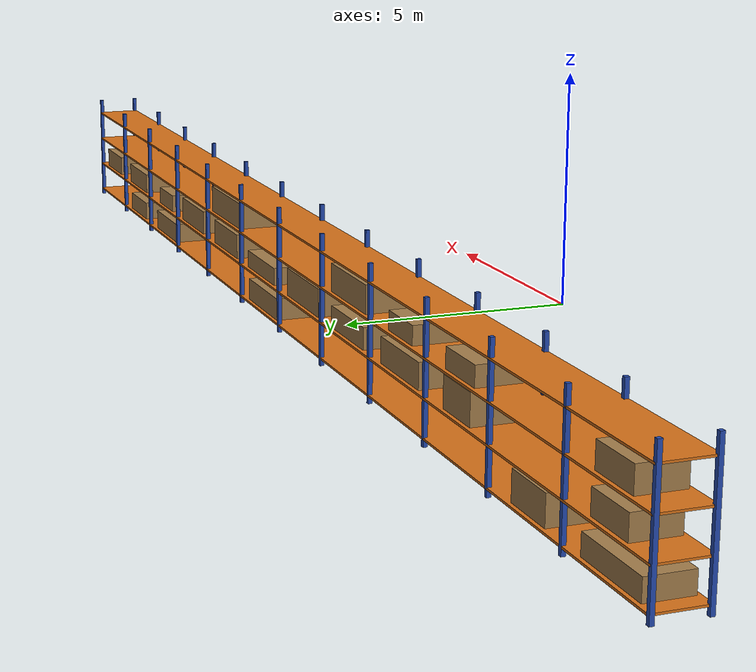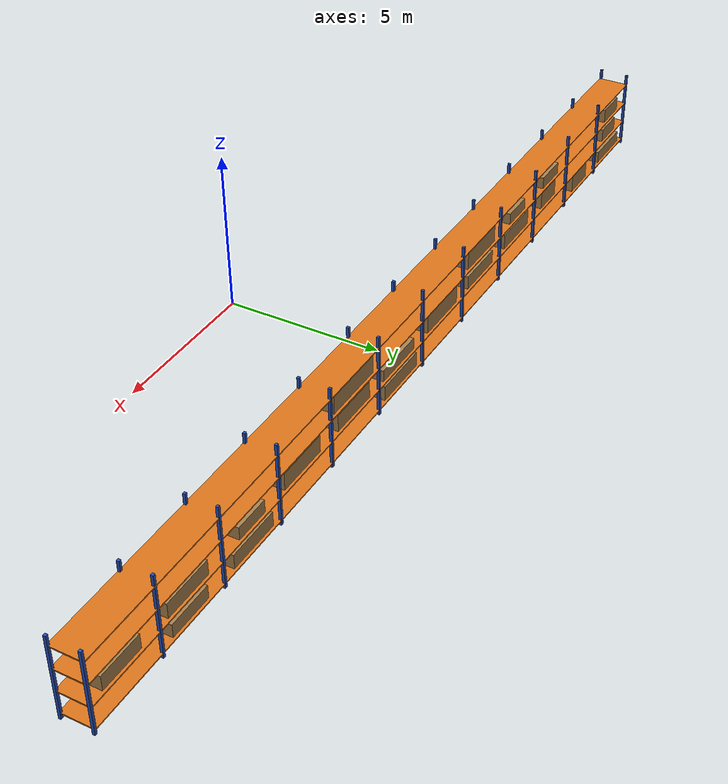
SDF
<sdf version="1.6">
 <world name="warehouse">
  <model name="shelf_row_0">
   <static>true</static>
   <link name="link">
    <visual name="up0_0_v">
     <pose>-15.0000 5.5400 1.3000 0 0 0.0000</pose>
     <geometry><box><size>0.0800 0.0800 2.6000</size></box></geometry>
     <material>
      <ambient>0.15 0.3 0.7 1</ambient>
      <diffuse>0.15 0.3 0.7 1</diffuse>
      <specular>0.1 0.1 0.1 1</specular>
     </material>
    </visual>
    <collision name="up0_0_c">
     <pose>-15.0000 5.5400 1.3000 0 0 0.0000</pose>
     <geometry><box><size>0.0800 0.0800 2.6000</size></box></geometry>
    </collision>
    <visual name="up0_2_v">
     <pose>-15.0000 6.4600 1.3000 0 0 0.0000</pose>
     <geometry><box><size>0.0800 0.0800 2.6000</size></box></geometry>
     <material>
      <ambient>0.15 0.3 0.7 1</ambient>
      <diffuse>0.15 0.3 0.7 1</diffuse>
      <specular>0.1 0.1 0.1 1</specular>
     </material>
    </visual>
    <collision name="up0_2_c">
     <pose>-15.0000 6.4600 1.3000 0 0 0.0000</pose>
     <geometry><box><size>0.0800 0.0800 2.6000</size></box></geometry>
    </collision>
    <visual name="up1_0_v">
     <pose>-12.5000 5.5400 1.3000 0 0 0.0000</pose>
     <geometry><box><size>0.0800 0.0800 2.6000</size></box></geometry>
     <material>
      <ambient>0.15 0.3 0.7 1</ambient>
      <diffuse>0.15 0.3 0.7 1</diffuse>
      <specular>0.1 0.1 0.1 1</specular>
     </material>
    </visual>
    <collision name="up1_0_c">
     <pose>-12.5000 5.5400 1.3000 0 0 0.0000</pose>
     <geometry><box><size>0.0800 0.0800 2.6000</size></box></geometry>
    </collision>
    <visual name="up1_2_v">
     <pose>-12.5000 6.4600 1.3000 0 0 0.0000</pose>
     <geometry><box><size>0.0800 0.0800 2.6000</size></box></geometry>
     <material>
      <ambient>0.15 0.3 0.7 1</ambient>
      <diffuse>0.15 0.3 0.7 1</diffuse>
      <specular>0.1 0.1 0.1 1</specular>
     </material>
    </visual>
    <collision name="up1_2_c">
     <pose>-12.5000 6.4600 1.3000 0 0 0.0000</pose>
     <geometry><box><size>0.0800 0.0800 2.6000</size></box></geometry>
    </collision>
    <visual name="up2_0_v">
     <pose>-10.0000 5.5400 1.3000 0 0 0.0000</pose>
     <geometry><box><size>0.0800 0.0800 2.6000</size></box></geometry>
     <material>
      <ambient>0.15 0.3 0.7 1</ambient>
      <diffuse>0.15 0.3 0.7 1</diffuse>
      <specular>0.1 0.1 0.1 1</specular>
     </material>
    </visual>
    <collision name="up2_0_c">
     <pose>-10.0000 5.5400 1.3000 0 0 0.0000</pose>
     <geometry><box><size>0.0800 0.0800 2.6000</size></box></geometry>
    </collision>
    <visual name="up2_2_v">
     <pose>-10.0000 6.4600 1.3000 0 0 0.0000</pose>
     <geometry><box><size>0.0800 0.0800 2.6000</size></box></geometry>
     <material>
      <ambient>0.15 0.3 0.7 1</ambient>
      <diffuse>0.15 0.3 0.7 1</diffuse>
      <specular>0.1 0.1 0.1 1</specular>
     </material>
    </visual>
    <collision name="up2_2_c">
     <pose>-10.0000 6.4600 1.3000 0 0 0.0000</pose>
     <geometry><box><size>0.0800 0.0800 2.6000</size></box></geometry>
    </collision>
    <visual name="up3_0_v">
     <pose>-7.5000 5.5400 1.3000 0 0 0.0000</pose>
     <geometry><box><size>0.0800 0.0800 2.6000</size></box></geometry>
     <material>
      <ambient>0.15 0.3 0.7 1</ambient>
      <diffuse>0.15 0.3 0.7 1</diffuse>
      <specular>0.1 0.1 0.1 1</specular>
     </material>
    </visual>
    <collision name="up3_0_c">
     <pose>-7.5000 5.5400 1.3000 0 0 0.0000</pose>
     <geometry><box><size>0.0800 0.0800 2.6000</size></box></geometry>
    </collision>
    <visual name="up3_2_v">
     <pose>-7.5000 6.4600 1.3000 0 0 0.0000</pose>
     <geometry><box><size>0.0800 0.0800 2.6000</size></box></geometry>
     <material>
      <ambient>0.15 0.3 0.7 1</ambient>
      <diffuse>0.15 0.3 0.7 1</diffuse>
      <specular>0.1 0.1 0.1 1</specular>
     </material>
    </visual>
    <collision name="up3_2_c">
     <pose>-7.5000 6.4600 1.3000 0 0 0.0000</pose>
     <geometry><box><size>0.0800 0.0800 2.6000</size></box></geometry>
    </collision>
    <visual name="up4_0_v">
     <pose>-5.0000 5.5400 1.3000 0 0 0.0000</pose>
     <geometry><box><size>0.0800 0.0800 2.6000</size></box></geometry>
     <material>
      <ambient>0.15 0.3 0.7 1</ambient>
      <diffuse>0.15 0.3 0.7 1</diffuse>
      <specular>0.1 0.1 0.1 1</specular>
     </material>
    </visual>
    <collision name="up4_0_c">
     <pose>-5.0000 5.5400 1.3000 0 0 0.0000</pose>
     <geometry><box><size>0.0800 0.0800 2.6000</size></box></geometry>
    </collision>
    <visual name="up4_2_v">
     <pose>-5.0000 6.4600 1.3000 0 0 0.0000</pose>
     <geometry><box><size>0.0800 0.0800 2.6000</size></box></geometry>
     <material>
      <ambient>0.15 0.3 0.7 1</ambient>
      <diffuse>0.15 0.3 0.7 1</diffuse>
      <specular>0.1 0.1 0.1 1</specular>
     </material>
    </visual>
    <collision name="up4_2_c">
     <pose>-5.0000 6.4600 1.3000 0 0 0.0000</pose>
     <geometry><box><size>0.0800 0.0800 2.6000</size></box></geometry>
    </collision>
    <visual name="up5_0_v">
     <pose>-2.5000 5.5400 1.3000 0 0 0.0000</pose>
     <geometry><box><size>0.0800 0.0800 2.6000</size></box></geometry>
     <material>
      <ambient>0.15 0.3 0.7 1</ambient>
      <diffuse>0.15 0.3 0.7 1</diffuse>
      <specular>0.1 0.1 0.1 1</specular>
     </material>
    </visual>
    <collision name="up5_0_c">
     <pose>-2.5000 5.5400 1.3000 0 0 0.0000</pose>
     <geometry><box><size>0.0800 0.0800 2.6000</size></box></geometry>
    </collision>
    <visual name="up5_2_v">
     <pose>-2.5000 6.4600 1.3000 0 0 0.0000</pose>
     <geometry><box><size>0.0800 0.0800 2.6000</size></box></geometry>
     <material>
      <ambient>0.15 0.3 0.7 1</ambient>
      <diffuse>0.15 0.3 0.7 1</diffuse>
      <specular>0.1 0.1 0.1 1</specular>
     </material>
    </visual>
    <collision name="up5_2_c">
     <pose>-2.5000 6.4600 1.3000 0 0 0.0000</pose>
     <geometry><box><size>0.0800 0.0800 2.6000</size></box></geometry>
    </collision>
    <visual name="up6_0_v">
     <pose>0.0000 5.5400 1.3000 0 0 0.0000</pose>
     <geometry><box><size>0.0800 0.0800 2.6000</size></box></geometry>
     <material>
      <ambient>0.15 0.3 0.7 1</ambient>
      <diffuse>0.15 0.3 0.7 1</diffuse>
      <specular>0.1 0.1 0.1 1</specular>
     </material>
    </visual>
    <collision name="up6_0_c">
     <pose>0.0000 5.5400 1.3000 0 0 0.0000</pose>
     <geometry><box><size>0.0800 0.0800 2.6000</size></box></geometry>
    </collision>
    <visual name="up6_2_v">
     <pose>0.0000 6.4600 1.3000 0 0 0.0000</pose>
     <geometry><box><size>0.0800 0.0800 2.6000</size></box></geometry>
     <material>
      <ambient>0.15 0.3 0.7 1</ambient>
      <diffuse>0.15 0.3 0.7 1</diffuse>
      <specular>0.1 0.1 0.1 1</specular>
     </material>
    </visual>
    <collision name="up6_2_c">
     <pose>0.0000 6.4600 1.3000 0 0 0.0000</pose>
     <geometry><box><size>0.0800 0.0800 2.6000</size></box></geometry>
    </collision>
    <visual name="up7_0_v">
     <pose>2.5000 5.5400 1.3000 0 0 0.0000</pose>
     <geometry><box><size>0.0800 0.0800 2.6000</size></box></geometry>
     <material>
      <ambient>0.15 0.3 0.7 1</ambient>
      <diffuse>0.15 0.3 0.7 1</diffuse>
      <specular>0.1 0.1 0.1 1</specular>
     </material>
    </visual>
    <collision name="up7_0_c">
     <pose>2.5000 5.5400 1.3000 0 0 0.0000</pose>
     <geometry><box><size>0.0800 0.0800 2.6000</size></box></geometry>
    </collision>
    <visual name="up7_2_v">
     <pose>2.5000 6.4600 1.3000 0 0 0.0000</pose>
     <geometry><box><size>0.0800 0.0800 2.6000</size></box></geometry>
     <material>
      <ambient>0.15 0.3 0.7 1</ambient>
      <diffuse>0.15 0.3 0.7 1</diffuse>
      <specular>0.1 0.1 0.1 1</specular>
     </material>
    </visual>
    <collision name="up7_2_c">
     <pose>2.5000 6.4600 1.3000 0 0 0.0000</pose>
     <geometry><box><size>0.0800 0.0800 2.6000</size></box></geometry>
    </collision>
    <visual name="up8_0_v">
     <pose>5.0000 5.5400 1.3000 0 0 0.0000</pose>
     <geometry><box><size>0.0800 0.0800 2.6000</size></box></geometry>
     <material>
      <ambient>0.15 0.3 0.7 1</ambient>
      <diffuse>0.15 0.3 0.7 1</diffuse>
      <specular>0.1 0.1 0.1 1</specular>
     </material>
    </visual>
    <collision name="up8_0_c">
     <pose>5.0000 5.5400 1.3000 0 0 0.0000</pose>
     <geometry><box><size>0.0800 0.0800 2.6000</size></box></geometry>
    </collision>
    <visual name="up8_2_v">
     <pose>5.0000 6.4600 1.3000 0 0 0.0000</pose>
     <geometry><box><size>0.0800 0.0800 2.6000</size></box></geometry>
     <material>
      <ambient>0.15 0.3 0.7 1</ambient>
      <diffuse>0.15 0.3 0.7 1</diffuse>
      <specular>0.1 0.1 0.1 1</specular>
     </material>
    </visual>
    <collision name="up8_2_c">
     <pose>5.0000 6.4600 1.3000 0 0 0.0000</pose>
     <geometry><box><size>0.0800 0.0800 2.6000</size></box></geometry>
    </collision>
    <visual name="up9_0_v">
     <pose>7.5000 5.5400 1.3000 0 0 0.0000</pose>
     <geometry><box><size>0.0800 0.0800 2.6000</size></box></geometry>
     <material>
      <ambient>0.15 0.3 0.7 1</ambient>
      <diffuse>0.15 0.3 0.7 1</diffuse>
      <specular>0.1 0.1 0.1 1</specular>
     </material>
    </visual>
    <collision name="up9_0_c">
     <pose>7.5000 5.5400 1.3000 0 0 0.0000</pose>
     <geometry><box><size>0.0800 0.0800 2.6000</size></box></geometry>
    </collision>
    <visual name="up9_2_v">
     <pose>7.5000 6.4600 1.3000 0 0 0.0000</pose>
     <geometry><box><size>0.0800 0.0800 2.6000</size></box></geometry>
     <material>
      <ambient>0.15 0.3 0.7 1</ambient>
      <diffuse>0.15 0.3 0.7 1</diffuse>
      <specular>0.1 0.1 0.1 1</specular>
     </material>
    </visual>
    <collision name="up9_2_c">
     <pose>7.5000 6.4600 1.3000 0 0 0.0000</pose>
     <geometry><box><size>0.0800 0.0800 2.6000</size></box></geometry>
    </collision>
    <visual name="up10_0_v">
     <pose>10.0000 5.5400 1.3000 0 0 0.0000</pose>
     <geometry><box><size>0.0800 0.0800 2.6000</size></box></geometry>
     <material>
      <ambient>0.15 0.3 0.7 1</ambient>
      <diffuse>0.15 0.3 0.7 1</diffuse>
      <specular>0.1 0.1 0.1 1</specular>
     </material>
    </visual>
    <collision name="up10_0_c">
     <pose>10.0000 5.5400 1.3000 0 0 0.0000</pose>
     <geometry><box><size>0.0800 0.0800 2.6000</size></box></geometry>
    </collision>
    <visual name="up10_2_v">
     <pose>10.0000 6.4600 1.3000 0 0 0.0000</pose>
     <geometry><box><size>0.0800 0.0800 2.6000</size></box></geometry>
     <material>
      <ambient>0.15 0.3 0.7 1</ambient>
      <diffuse>0.15 0.3 0.7 1</diffuse>
      <specular>0.1 0.1 0.1 1</specular>
     </material>
    </visual>
    <collision name="up10_2_c">
     <pose>10.0000 6.4600 1.3000 0 0 0.0000</pose>
     <geometry><box><size>0.0800 0.0800 2.6000</size></box></geometry>
    </collision>
    <visual name="up11_0_v">
     <pose>12.5000 5.5400 1.3000 0 0 0.0000</pose>
     <geometry><box><size>0.0800 0.0800 2.6000</size></box></geometry>
     <material>
      <ambient>0.15 0.3 0.7 1</ambient>
      <diffuse>0.15 0.3 0.7 1</diffuse>
      <specular>0.1 0.1 0.1 1</specular>
     </material>
    </visual>
    <collision name="up11_0_c">
     <pose>12.5000 5.5400 1.3000 0 0 0.0000</pose>
     <geometry><box><size>0.0800 0.0800 2.6000</size></box></geometry>
    </collision>
    <visual name="up11_2_v">
     <pose>12.5000 6.4600 1.3000 0 0 0.0000</pose>
     <geometry><box><size>0.0800 0.0800 2.6000</size></box></geometry>
     <material>
      <ambient>0.15 0.3 0.7 1</ambient>
      <diffuse>0.15 0.3 0.7 1</diffuse>
      <specular>0.1 0.1 0.1 1</specular>
     </material>
    </visual>
    <collision name="up11_2_c">
     <pose>12.5000 6.4600 1.3000 0 0 0.0000</pose>
     <geometry><box><size>0.0800 0.0800 2.6000</size></box></geometry>
    </collision>
    <visual name="up12_0_v">
     <pose>15.0000 5.5400 1.3000 0 0 0.0000</pose>
     <geometry><box><size>0.0800 0.0800 2.6000</size></box></geometry>
     <material>
      <ambient>0.15 0.3 0.7 1</ambient>
      <diffuse>0.15 0.3 0.7 1</diffuse>
      <specular>0.1 0.1 0.1 1</specular>
     </material>
    </visual>
    <collision name="up12_0_c">
     <pose>15.0000 5.5400 1.3000 0 0 0.0000</pose>
     <geometry><box><size>0.0800 0.0800 2.6000</size></box></geometry>
    </collision>
    <visual name="up12_2_v">
     <pose>15.0000 6.4600 1.3000 0 0 0.0000</pose>
     <geometry><box><size>0.0800 0.0800 2.6000</size></box></geometry>
     <material>
      <ambient>0.15 0.3 0.7 1</ambient>
      <diffuse>0.15 0.3 0.7 1</diffuse>
      <specular>0.1 0.1 0.1 1</specular>
     </material>
    </visual>
    <collision name="up12_2_c">
     <pose>15.0000 6.4600 1.3000 0 0 0.0000</pose>
     <geometry><box><size>0.0800 0.0800 2.6000</size></box></geometry>
    </collision>
    <visual name="beam0_v">
     <pose>0.0000 6.0000 0.1500 0 0 0.0000</pose>
     <geometry><box><size>30.0000 1.0000 0.0400</size></box></geometry>
     <material>
      <ambient>0.85 0.45 0.1 1</ambient>
      <diffuse>0.85 0.45 0.1 1</diffuse>
      <specular>0.1 0.1 0.1 1</specular>
     </material>
    </visual>
    <collision name="beam0_c">
     <pose>0.0000 6.0000 0.1500 0 0 0.0000</pose>
     <geometry><box><size>30.0000 1.0000 0.0400</size></box></geometry>
    </collision>
    <visual name="beam1_v">
     <pose>0.0000 6.0000 0.8500 0 0 0.0000</pose>
     <geometry><box><size>30.0000 1.0000 0.0400</size></box></geometry>
     <material>
      <ambient>0.85 0.45 0.1 1</ambient>
      <diffuse>0.85 0.45 0.1 1</diffuse>
      <specular>0.1 0.1 0.1 1</specular>
     </material>
    </visual>
    <collision name="beam1_c">
     <pose>0.0000 6.0000 0.8500 0 0 0.0000</pose>
     <geometry><box><size>30.0000 1.0000 0.0400</size></box></geometry>
    </collision>
    <visual name="beam2_v">
     <pose>0.0000 6.0000 1.5500 0 0 0.0000</pose>
     <geometry><box><size>30.0000 1.0000 0.0400</size></box></geometry>
     <material>
      <ambient>0.85 0.45 0.1 1</ambient>
      <diffuse>0.85 0.45 0.1 1</diffuse>
      <specular>0.1 0.1 0.1 1</specular>
     </material>
    </visual>
    <collision name="beam2_c">
     <pose>0.0000 6.0000 1.5500 0 0 0.0000</pose>
     <geometry><box><size>30.0000 1.0000 0.0400</size></box></geometry>
    </collision>
    <visual name="beam3_v">
     <pose>0.0000 6.0000 2.2500 0 0 0.0000</pose>
     <geometry><box><size>30.0000 1.0000 0.0400</size></box></geometry>
     <material>
      <ambient>0.85 0.45 0.1 1</ambient>
      <diffuse>0.85 0.45 0.1 1</diffuse>
      <specular>0.1 0.1 0.1 1</specular>
     </material>
    </visual>
    <collision name="beam3_c">
     <pose>0.0000 6.0000 2.2500 0 0 0.0000</pose>
     <geometry><box><size>30.0000 1.0000 0.0400</size></box></geometry>
    </collision>
    <visual name="pal0_0_v">
     <pose>-13.8355 6.0000 0.3639 0 0 0.0000</pose>
     <geometry><box><size>1.7160 0.8500 0.3877</size></box></geometry>
     <material>
      <ambient>0.65 0.5 0.3 1</ambient>
      <diffuse>0.65 0.5 0.3 1</diffuse>
      <specular>0.1 0.1 0.1 1</specular>
     </material>
    </visual>
    <collision name="pal0_0_c">
     <pose>-13.8355 6.0000 0.3639 0 0 0.0000</pose>
     <geometry><box><size>1.7160 0.8500 0.3877</size></box></geometry>
    </collision>
    <visual name="pal0_1_v">
     <pose>-13.7485 6.0000 1.0907 0 0 0.0000</pose>
     <geometry><box><size>1.0638 0.8500 0.4414</size></box></geometry>
     <material>
      <ambient>0.65 0.5 0.3 1</ambient>
      <diffuse>0.65 0.5 0.3 1</diffuse>
      <specular>0.1 0.1 0.1 1</specular>
     </material>
    </visual>
    <collision name="pal0_1_c">
     <pose>-13.7485 6.0000 1.0907 0 0 0.0000</pose>
     <geometry><box><size>1.0638 0.8500 0.4414</size></box></geometry>
    </collision>
    <visual name="pal0_2_v">
     <pose>-13.8319 6.0000 1.7992 0 0 0.0000</pose>
     <geometry><box><size>1.0768 0.8500 0.4584</size></box></geometry>
     <material>
      <ambient>0.65 0.5 0.3 1</ambient>
      <diffuse>0.65 0.5 0.3 1</diffuse>
      <specular>0.1 0.1 0.1 1</specular>
     </material>
    </visual>
    <collision name="pal0_2_c">
     <pose>-13.8319 6.0000 1.7992 0 0 0.0000</pose>
     <geometry><box><size>1.0768 0.8500 0.4584</size></box></geometry>
    </collision>
    <visual name="pal1_0_v">
     <pose>-11.3054 6.0000 0.4484 0 0 0.0000</pose>
     <geometry><box><size>1.1362 0.8500 0.5567</size></box></geometry>
     <material>
      <ambient>0.65 0.5 0.3 1</ambient>
      <diffuse>0.65 0.5 0.3 1</diffuse>
      <specular>0.1 0.1 0.1 1</specular>
     </material>
    </visual>
    <collision name="pal1_0_c">
     <pose>-11.3054 6.0000 0.4484 0 0 0.0000</pose>
     <geometry><box><size>1.1362 0.8500 0.5567</size></box></geometry>
    </collision>
    <visual name="pal2_1_v">
     <pose>-8.6783 6.0000 1.1670 0 0 0.0000</pose>
     <geometry><box><size>1.0512 0.8500 0.5941</size></box></geometry>
     <material>
      <ambient>0.65 0.5 0.3 1</ambient>
      <diffuse>0.65 0.5 0.3 1</diffuse>
      <specular>0.1 0.1 0.1 1</specular>
     </material>
    </visual>
    <collision name="pal2_1_c">
     <pose>-8.6783 6.0000 1.1670 0 0 0.0000</pose>
     <geometry><box><size>1.0512 0.8500 0.5941</size></box></geometry>
    </collision>
    <visual name="pal2_2_v">
     <pose>-8.7883 6.0000 1.7630 0 0 0.0000</pose>
     <geometry><box><size>1.1296 0.8500 0.3861</size></box></geometry>
     <material>
      <ambient>0.65 0.5 0.3 1</ambient>
      <diffuse>0.65 0.5 0.3 1</diffuse>
      <specular>0.1 0.1 0.1 1</specular>
     </material>
    </visual>
    <collision name="pal2_2_c">
     <pose>-8.7883 6.0000 1.7630 0 0 0.0000</pose>
     <geometry><box><size>1.1296 0.8500 0.3861</size></box></geometry>
    </collision>
    <visual name="pal3_1_v">
     <pose>-6.2755 6.0000 1.1177 0 0 0.0000</pose>
     <geometry><box><size>1.7028 0.8500 0.4954</size></box></geometry>
     <material>
      <ambient>0.65 0.5 0.3 1</ambient>
      <diffuse>0.65 0.5 0.3 1</diffuse>
      <specular>0.1 0.1 0.1 1</specular>
     </material>
    </visual>
    <collision name="pal3_1_c">
     <pose>-6.2755 6.0000 1.1177 0 0 0.0000</pose>
     <geometry><box><size>1.7028 0.8500 0.4954</size></box></geometry>
    </collision>
    <visual name="pal3_2_v">
     <pose>-6.3088 6.0000 1.7528 0 0 0.0000</pose>
     <geometry><box><size>1.0656 0.8500 0.3657</size></box></geometry>
     <material>
      <ambient>0.65 0.5 0.3 1</ambient>
      <diffuse>0.65 0.5 0.3 1</diffuse>
      <specular>0.1 0.1 0.1 1</specular>
     </material>
    </visual>
    <collision name="pal3_2_c">
     <pose>-6.3088 6.0000 1.7528 0 0 0.0000</pose>
     <geometry><box><size>1.0656 0.8500 0.3657</size></box></geometry>
    </collision>
    <visual name="pal4_1_v">
     <pose>-3.7594 6.0000 1.0843 0 0 0.0000</pose>
     <geometry><box><size>1.6441 0.8500 0.4285</size></box></geometry>
     <material>
      <ambient>0.65 0.5 0.3 1</ambient>
      <diffuse>0.65 0.5 0.3 1</diffuse>
      <specular>0.1 0.1 0.1 1</specular>
     </material>
    </visual>
    <collision name="pal4_1_c">
     <pose>-3.7594 6.0000 1.0843 0 0 0.0000</pose>
     <geometry><box><size>1.6441 0.8500 0.4285</size></box></geometry>
    </collision>
    <visual name="pal4_2_v">
     <pose>-3.8012 6.0000 1.8443 0 0 0.0000</pose>
     <geometry><box><size>1.7689 0.8500 0.5486</size></box></geometry>
     <material>
      <ambient>0.65 0.5 0.3 1</ambient>
      <diffuse>0.65 0.5 0.3 1</diffuse>
      <specular>0.1 0.1 0.1 1</specular>
     </material>
    </visual>
    <collision name="pal4_2_c">
     <pose>-3.8012 6.0000 1.8443 0 0 0.0000</pose>
     <geometry><box><size>1.7689 0.8500 0.5486</size></box></geometry>
    </collision>
    <visual name="pal5_1_v">
     <pose>-1.2924 6.0000 1.1544 0 0 0.0000</pose>
     <geometry><box><size>1.8024 0.8500 0.5688</size></box></geometry>
     <material>
      <ambient>0.65 0.5 0.3 1</ambient>
      <diffuse>0.65 0.5 0.3 1</diffuse>
      <specular>0.1 0.1 0.1 1</specular>
     </material>
    </visual>
    <collision name="pal5_1_c">
     <pose>-1.2924 6.0000 1.1544 0 0 0.0000</pose>
     <geometry><box><size>1.8024 0.8500 0.5688</size></box></geometry>
    </collision>
    <visual name="pal6_0_v">
     <pose>1.1804 6.0000 0.3973 0 0 0.0000</pose>
     <geometry><box><size>1.8329 0.8500 0.4545</size></box></geometry>
     <material>
      <ambient>0.65 0.5 0.3 1</ambient>
      <diffuse>0.65 0.5 0.3 1</diffuse>
      <specular>0.1 0.1 0.1 1</specular>
     </material>
    </visual>
    <collision name="pal6_0_c">
     <pose>1.1804 6.0000 0.3973 0 0 0.0000</pose>
     <geometry><box><size>1.8329 0.8500 0.4545</size></box></geometry>
    </collision>
    <visual name="pal6_1_v">
     <pose>1.3029 6.0000 1.0499 0 0 0.0000</pose>
     <geometry><box><size>1.7350 0.8500 0.3598</size></box></geometry>
     <material>
      <ambient>0.65 0.5 0.3 1</ambient>
      <diffuse>0.65 0.5 0.3 1</diffuse>
      <specular>0.1 0.1 0.1 1</specular>
     </material>
    </visual>
    <collision name="pal6_1_c">
     <pose>1.3029 6.0000 1.0499 0 0 0.0000</pose>
     <geometry><box><size>1.7350 0.8500 0.3598</size></box></geometry>
    </collision>
    <visual name="pal7_1_v">
     <pose>3.7660 6.0000 1.1319 0 0 0.0000</pose>
     <geometry><box><size>1.6538 0.8500 0.5238</size></box></geometry>
     <material>
      <ambient>0.65 0.5 0.3 1</ambient>
      <diffuse>0.65 0.5 0.3 1</diffuse>
      <specular>0.1 0.1 0.1 1</specular>
     </material>
    </visual>
    <collision name="pal7_1_c">
     <pose>3.7660 6.0000 1.1319 0 0 0.0000</pose>
     <geometry><box><size>1.6538 0.8500 0.5238</size></box></geometry>
    </collision>
    <visual name="pal7_2_v">
     <pose>3.7448 6.0000 1.8500 0 0 0.0000</pose>
     <geometry><box><size>2.0391 0.8500 0.5600</size></box></geometry>
     <material>
      <ambient>0.65 0.5 0.3 1</ambient>
      <diffuse>0.65 0.5 0.3 1</diffuse>
      <specular>0.1 0.1 0.1 1</specular>
     </material>
    </visual>
    <collision name="pal7_2_c">
     <pose>3.7448 6.0000 1.8500 0 0 0.0000</pose>
     <geometry><box><size>2.0391 0.8500 0.5600</size></box></geometry>
    </collision>
    <visual name="pal8_1_v">
     <pose>6.3486 6.0000 1.1327 0 0 0.0000</pose>
     <geometry><box><size>1.7118 0.8500 0.5254</size></box></geometry>
     <material>
      <ambient>0.65 0.5 0.3 1</ambient>
      <diffuse>0.65 0.5 0.3 1</diffuse>
      <specular>0.1 0.1 0.1 1</specular>
     </material>
    </visual>
    <collision name="pal8_1_c">
     <pose>6.3486 6.0000 1.1327 0 0 0.0000</pose>
     <geometry><box><size>1.7118 0.8500 0.5254</size></box></geometry>
    </collision>
    <visual name="pal9_0_v">
     <pose>8.6545 6.0000 0.3932 0 0 0.0000</pose>
     <geometry><box><size>1.7355 0.8500 0.4464</size></box></geometry>
     <material>
      <ambient>0.65 0.5 0.3 1</ambient>
      <diffuse>0.65 0.5 0.3 1</diffuse>
      <specular>0.1 0.1 0.1 1</specular>
     </material>
    </visual>
    <collision name="pal9_0_c">
     <pose>8.6545 6.0000 0.3932 0 0 0.0000</pose>
     <geometry><box><size>1.7355 0.8500 0.4464</size></box></geometry>
    </collision>
    <visual name="pal9_1_v">
     <pose>8.6618 6.0000 1.0660 0 0 0.0000</pose>
     <geometry><box><size>1.1288 0.8500 0.3920</size></box></geometry>
     <material>
      <ambient>0.65 0.5 0.3 1</ambient>
      <diffuse>0.65 0.5 0.3 1</diffuse>
      <specular>0.1 0.1 0.1 1</specular>
     </material>
    </visual>
    <collision name="pal9_1_c">
     <pose>8.6618 6.0000 1.0660 0 0 0.0000</pose>
     <geometry><box><size>1.1288 0.8500 0.3920</size></box></geometry>
    </collision>
    <visual name="pal10_0_v">
     <pose>11.3243 6.0000 0.3760 0 0 0.0000</pose>
     <geometry><box><size>1.4300 0.8500 0.4119</size></box></geometry>
     <material>
      <ambient>0.65 0.5 0.3 1</ambient>
      <diffuse>0.65 0.5 0.3 1</diffuse>
      <specular>0.1 0.1 0.1 1</specular>
     </material>
    </visual>
    <collision name="pal10_0_c">
     <pose>11.3243 6.0000 0.3760 0 0 0.0000</pose>
     <geometry><box><size>1.4300 0.8500 0.4119</size></box></geometry>
    </collision>
    <visual name="pal10_1_v">
     <pose>11.3267 6.0000 1.1011 0 0 0.0000</pose>
     <geometry><box><size>1.6044 0.8500 0.4623</size></box></geometry>
     <material>
      <ambient>0.65 0.5 0.3 1</ambient>
      <diffuse>0.65 0.5 0.3 1</diffuse>
      <specular>0.1 0.1 0.1 1</specular>
     </material>
    </visual>
    <collision name="pal10_1_c">
     <pose>11.3267 6.0000 1.1011 0 0 0.0000</pose>
     <geometry><box><size>1.6044 0.8500 0.4623</size></box></geometry>
    </collision>
    <visual name="pal11_1_v">
     <pose>13.8268 6.0000 1.0969 0 0 0.0000</pose>
     <geometry><box><size>1.3946 0.8500 0.4538</size></box></geometry>
     <material>
      <ambient>0.65 0.5 0.3 1</ambient>
      <diffuse>0.65 0.5 0.3 1</diffuse>
      <specular>0.1 0.1 0.1 1</specular>
     </material>
    </visual>
    <collision name="pal11_1_c">
     <pose>13.8268 6.0000 1.0969 0 0 0.0000</pose>
     <geometry><box><size>1.3946 0.8500 0.4538</size></box></geometry>
    </collision>
   </link>
  </model>
 </world>
</sdf>
